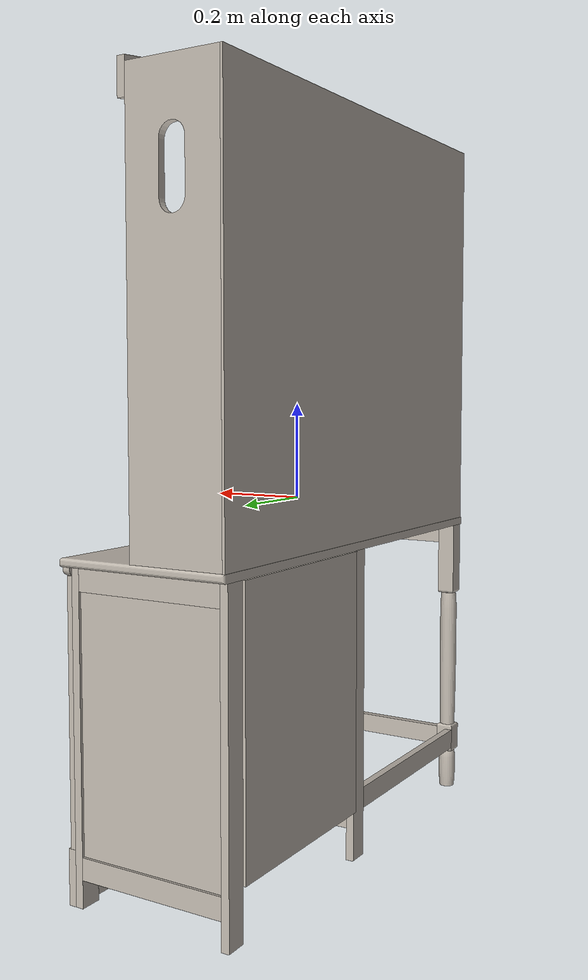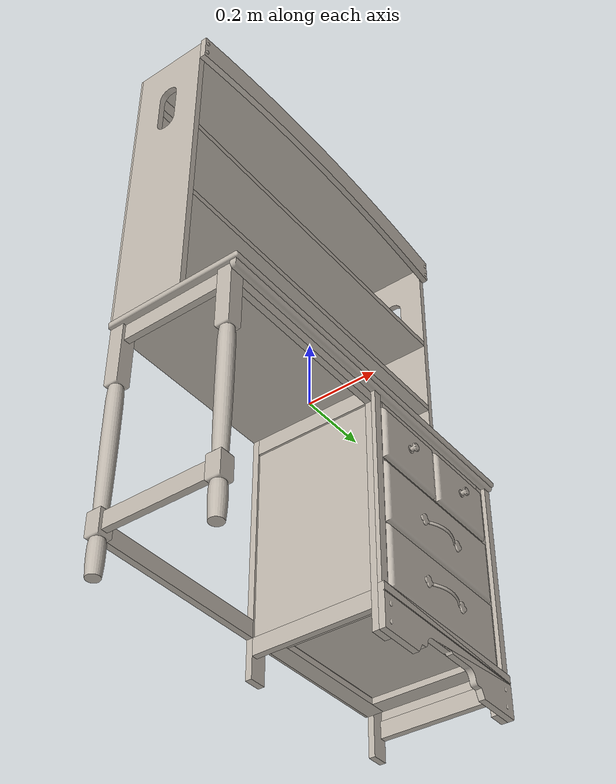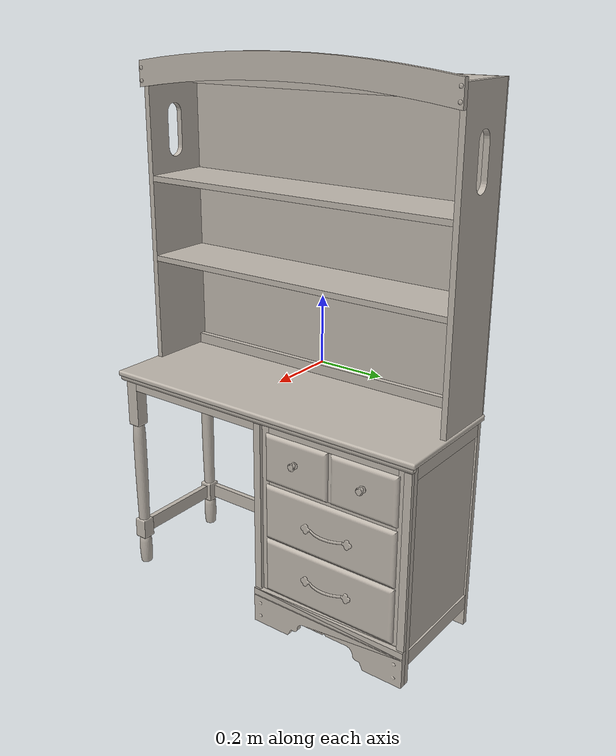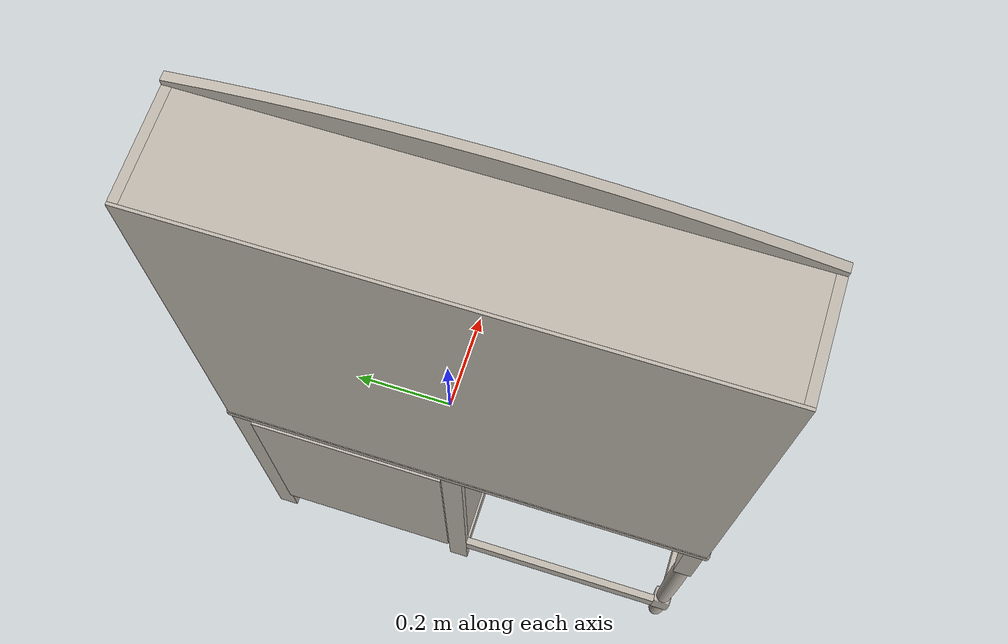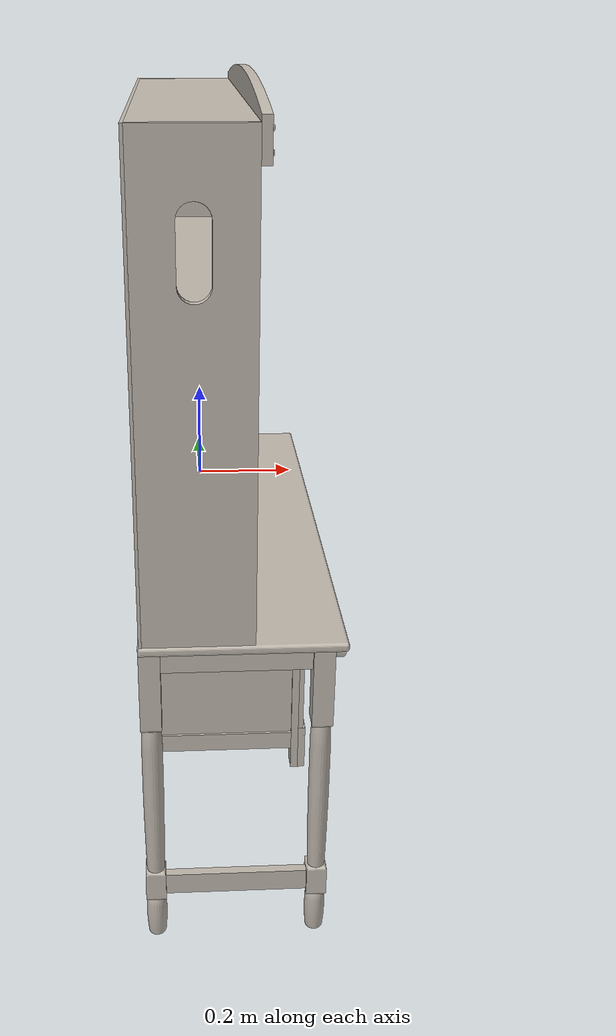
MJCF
<?xml version='1.0' encoding='utf-8'?>
<mujoco model="bookshelf_v2">
  <compiler angle="radian" meshdir="assets" texturedir="assets" autolimits="true" /><asset>
    <texture type="2d" name="wood" file="texture_0.png"/>
    <material name="default" shininess="0.1" texture="wood"/>
    <mesh name="original-26" file="original-26.obj"  />
    <mesh name="original-24" file="original-24.obj"  />
    <mesh name="original-22" file="original-22.obj"  />
    <mesh name="original-23" file="original-23.obj"  />
    <mesh name="original-25" file="original-25.obj"  />
    <mesh name="original-27" file="original-27.obj"  />
    <mesh name="original-98" file="original-98.obj"  />
    <mesh name="original-97" file="original-97.obj"  />
    <mesh name="original-96" file="original-96.obj"  />
    <mesh name="original-49" file="original-49.obj"  />
    <mesh name="original-47" file="original-47.obj"  />
    <mesh name="original-45" file="original-45.obj"  />
    <mesh name="original-46" file="original-46.obj"  />
    <mesh name="original-48" file="original-48.obj"  />
    <mesh name="original-50" file="original-50.obj"  />
    <mesh name="original-83" file="original-83.obj"  />
    <mesh name="original-75" file="original-75.obj"  />
    <mesh name="original-39" file="original-39.obj"  />
    <mesh name="original-37" file="original-37.obj"  />
    <mesh name="original-35" file="original-35.obj"  />
    <mesh name="original-36" file="original-36.obj"  />
    <mesh name="original-38" file="original-38.obj"  />
    <mesh name="original-40" file="original-40.obj"  />
    <mesh name="original-92" file="original-92.obj"  />
    <mesh name="original-93" file="original-93.obj"  />
    <mesh name="original-94" file="original-94.obj"  />
    <mesh name="original-73" file="original-73.obj"  />
    <mesh name="original-68" file="original-68.obj"  />
    <mesh name="original-56" file="original-56.obj"  />
    <mesh name="original-57" file="original-57.obj"  />
    <mesh name="original-51" file="original-51.obj"  />
    <mesh name="original-29" file="original-29.obj"  />
    <mesh name="original-88" file="original-88.obj"  />
    <mesh name="original-87" file="original-87.obj"  />
    <mesh name="original-80" file="original-80.obj"  />
    <mesh name="original-79" file="original-79.obj"  />
    <mesh name="new-0" file="new-0.obj"  />
    <mesh name="new-1" file="new-1.obj"  />
    <mesh name="original-61" file="original-61.obj"  />
    <mesh name="original-70" file="original-70.obj"  />
    <mesh name="original-77" file="original-77.obj"  />
    <mesh name="original-85" file="original-85.obj"  />
    <mesh name="original-18" file="original-18.obj"  />
    <mesh name="original-54" file="original-54.obj"  />
    <mesh name="original-32" file="original-32.obj"  />
    <mesh name="original-42" file="original-42.obj"  />
    <mesh name="original-71" file="original-71.obj"  />
    <mesh name="original-16" file="original-16.obj"  />
    <mesh name="original-19" file="original-19.obj"  />
    <mesh name="original-28" file="original-28.obj"  />
    <mesh name="original-52" file="original-52.obj"  />
    <mesh name="original-58" file="original-58.obj"  />
    <mesh name="original-63" file="original-63.obj"  />
    <mesh name="original-86" file="original-86.obj"  />
    <mesh name="original-78" file="original-78.obj"  />
    <mesh name="original-65" file="original-65.obj"  />
    <mesh name="original-53" file="original-53.obj"  />
    <mesh name="original-31" file="original-31.obj"  />
    <mesh name="original-41" file="original-41.obj"  />
    <mesh name="original-72" file="original-72.obj"  />
    <mesh name="original-30" file="original-30.obj"  />
    <mesh name="original-69" file="original-69.obj"  />
    <mesh name="original-17" file="original-17.obj"  />
    <mesh name="original-67" file="original-67.obj"  />
    <mesh name="original-60" file="original-60.obj"  />
    <mesh name="original-64" file="original-64.obj"  />
    <mesh name="original-62" file="original-62.obj"  />
    <mesh name="original-55" file="original-55.obj"  />
    <mesh name="original-59" file="original-59.obj"  />
    <mesh name="original-8" file="original-8.obj"  />
    <mesh name="original-4" file="original-4.obj"  />
    <mesh name="original-9" file="original-9.obj"  />
    <mesh name="original-2" file="original-2.obj"  />
    <mesh name="original-3" file="original-3.obj"  />
    <mesh name="original-10" file="original-10.obj"  />
    <mesh name="original-7" file="original-7.obj"  />
    <mesh name="original-5" file="original-5.obj"  />
    <mesh name="original-14" file="original-14.obj"  />
    <mesh name="original-11" file="original-11.obj"  />
    <mesh name="original-6" file="original-6.obj"  />
    <mesh name="original-12" file="original-12.obj"  />
    <mesh name="original-13" file="original-13.obj"  />
  </asset>
  <worldbody>
    <site name="lower_shelf_site" type="box" size=".1 .5 .12" pos="0 -.06 0.35" rgba="1 0 0 0" />
    <site name="upper_shelf_site" type="box"  size=".1 .5 .12" pos="0 -0.06 0.6" rgba="1 0 0 0"/>
    <body name="counter">
    <geom quat="0.5 0.5 0.5 0.5" type="mesh" material="default" mesh="original-73" solimp="0.95 0.98 0.001" solref="0.004 1"/>
    </body>

    <geom quat="0.5 0.5 0.5 0.5" type="mesh" material="default" mesh="original-68" solimp="0.95 0.98 0.001" solref="0.004 1"/>
    <geom quat="0.5 0.5 0.5 0.5" type="mesh" material="default" mesh="original-56" solimp="0.95 0.98 0.001" solref="0.004 1"/>
    <geom quat="0.5 0.5 0.5 0.5" type="mesh" material="default" mesh="original-57" solimp="0.95 0.98 0.001" solref="0.004 1"/>
    <geom quat="0.5 0.5 0.5 0.5" type="mesh" material="default" mesh="original-51" solimp="0.95 0.98 0.001" solref="0.004 1"/>
    <geom quat="0.5 0.5 0.5 0.5" type="mesh" material="default" mesh="original-29" solimp="0.95 0.98 0.001" solref="0.004 1"/>
    <geom quat="0.5 0.5 0.5 0.5" type="mesh" material="default" mesh="original-88" solimp="0.95 0.98 0.001" solref="0.004 1"/>
    <geom quat="0.5 0.5 0.5 0.5" type="mesh" material="default" mesh="original-87" solimp="0.95 0.98 0.001" solref="0.004 1"/>
    <geom quat="0.5 0.5 0.5 0.5" type="mesh" material="default" mesh="original-80" solimp="0.95 0.98 0.001" solref="0.004 1"/>
    <geom quat="0.5 0.5 0.5 0.5" type="mesh" material="default" mesh="original-79" solimp="0.95 0.98 0.001" solref="0.004 1"/>
    <geom quat="0.5 0.5 0.5 0.5" type="mesh" material="default" mesh="new-0" solimp="0.95 0.98 0.001" solref="0.004 1"/>
    <geom quat="0.5 0.5 0.5 0.5" type="mesh" material="default" mesh="new-1" solimp="0.95 0.98 0.001" solref="0.004 1"/>
    <geom quat="0.5 0.5 0.5 0.5" type="mesh" material="default" mesh="original-61" solimp="0.95 0.98 0.001" solref="0.004 1"/>
    <geom quat="0.5 0.5 0.5 0.5" type="mesh" material="default" mesh="original-70" solimp="0.95 0.98 0.001" solref="0.004 1"/>
    <geom quat="0.5 0.5 0.5 0.5" type="mesh" material="default" mesh="original-77" solimp="0.95 0.98 0.001" solref="0.004 1"/>
    <geom quat="0.5 0.5 0.5 0.5" type="mesh" material="default" mesh="original-85" solimp="0.95 0.98 0.001" solref="0.004 1"/>
    <geom quat="0.5 0.5 0.5 0.5" type="mesh" material="default" mesh="original-18" solimp="0.95 0.98 0.001" solref="0.004 1"/>
    <geom quat="0.5 0.5 0.5 0.5" type="mesh" material="default" mesh="original-54" solimp="0.95 0.98 0.001" solref="0.004 1"/>
    <geom quat="0.5 0.5 0.5 0.5" type="mesh" material="default" mesh="original-32" solimp="0.95 0.98 0.001" solref="0.004 1"/>
    <geom quat="0.5 0.5 0.5 0.5" type="mesh" material="default" mesh="original-42" solimp="0.95 0.98 0.001" solref="0.004 1"/>
    <geom quat="0.5 0.5 0.5 0.5" type="mesh" material="default" mesh="original-71" solimp="0.95 0.98 0.001" solref="0.004 1"/>
    <geom quat="0.5 0.5 0.5 0.5" type="mesh" material="default" mesh="original-16" solimp="0.95 0.98 0.001" solref="0.004 1"/>
    <geom quat="0.5 0.5 0.5 0.5" type="mesh" material="default" mesh="original-19" solimp="0.95 0.98 0.001" solref="0.004 1"/>
    <geom quat="0.5 0.5 0.5 0.5" type="mesh" material="default" mesh="original-28" solimp="0.95 0.98 0.001" solref="0.004 1"/>
    <geom quat="0.5 0.5 0.5 0.5" type="mesh" material="default" mesh="original-52" solimp="0.95 0.98 0.001" solref="0.004 1"/>
    <geom quat="0.5 0.5 0.5 0.5" type="mesh" material="default" mesh="original-58" solimp="0.95 0.98 0.001" solref="0.004 1"/>
    <geom quat="0.5 0.5 0.5 0.5" type="mesh" material="default" mesh="original-63" solimp="0.95 0.98 0.001" solref="0.004 1"/>
    <geom quat="0.5 0.5 0.5 0.5" type="mesh" material="default" mesh="original-86" solimp="0.95 0.98 0.001" solref="0.004 1"/>
    <geom quat="0.5 0.5 0.5 0.5" type="mesh" material="default" mesh="original-78" solimp="0.95 0.98 0.001" solref="0.004 1"/>
    <geom quat="0.5 0.5 0.5 0.5" type="mesh" material="default" mesh="original-65" solimp="0.95 0.98 0.001" solref="0.004 1"/>
    <geom quat="0.5 0.5 0.5 0.5" type="mesh" material="default" mesh="original-53" solimp="0.95 0.98 0.001" solref="0.004 1"/>

    <geom quat="0.5 0.5 0.5 0.5" type="mesh" material="default" mesh="original-31" solimp="0.95 0.98 0.001" solref="0.004 1"/>
    <geom quat="0.5 0.5 0.5 0.5" type="mesh" material="default" mesh="original-41" solimp="0.95 0.98 0.001" solref="0.004 1"/>
    <geom quat="0.5 0.5 0.5 0.5" type="mesh" material="default" mesh="original-72" solimp="0.95 0.98 0.001" solref="0.004 1"/>
    <geom quat="0.5 0.5 0.5 0.5" type="mesh" material="default" mesh="original-30" solimp="0.95 0.98 0.001" solref="0.004 1"/>
    <geom quat="0.5 0.5 0.5 0.5" type="mesh" material="default" mesh="original-69" solimp="0.95 0.98 0.001" solref="0.004 1"/>
    <geom quat="0.5 0.5 0.5 0.5" type="mesh" material="default" mesh="original-17" solimp="0.95 0.98 0.001" solref="0.004 1"/>
    <geom quat="0.5 0.5 0.5 0.5" type="mesh" material="default" mesh="original-67" solimp="0.95 0.98 0.001" solref="0.004 1"/>
    <geom quat="0.5 0.5 0.5 0.5" type="mesh" material="default" mesh="original-60" solimp="0.95 0.98 0.001" solref="0.004 1"/>

    <geom quat="0.5 0.5 0.5 0.5" type="mesh" material="default" mesh="original-64" solimp="0.95 0.98 0.001" solref="0.004 1"/>
    <geom quat="0.5 0.5 0.5 0.5" type="mesh" material="default" mesh="original-62" solimp="0.95 0.98 0.001" solref="0.004 1"/>
    <geom quat="0.5 0.5 0.5 0.5" type="mesh" material="default" mesh="original-55" solimp="0.95 0.98 0.001" solref="0.004 1"/>
    <geom quat="0.5 0.5 0.5 0.5" type="mesh" material="default" mesh="original-59" solimp="0.95 0.98 0.001" solref="0.004 1"/>

    <body name="upper_shelf" >
    <geom quat="0.5 0.5 0.5 0.5" type="mesh" material="default" mesh="original-8" solimp="0.95 0.98 0.001" solref="0.004 1"/>
    </body>

    <body name="lower_shelf" >
    <geom quat="0.5 0.5 0.5 0.5" type="mesh" material="default" mesh="original-4" solimp="0.95 0.98 0.001" solref="0.004 1"/>
    </body>

    <geom quat="0.5 0.5 0.5 0.5" type="mesh" material="default" mesh="original-9" solimp="0.95 0.98 0.001" solref="0.004 1"/>
    <geom quat="0.5 0.5 0.5 0.5" type="mesh" material="default" mesh="original-2" solimp="0.95 0.98 0.001" solref="0.004 1"/>
    <geom quat="0.5 0.5 0.5 0.5" type="mesh" material="default" mesh="original-3" solimp="0.95 0.98 0.001" solref="0.004 1"/>
    <geom quat="0.5 0.5 0.5 0.5" type="mesh" material="default" mesh="original-10" solimp="0.95 0.98 0.001" solref="0.004 1"/>
    <geom quat="0.5 0.5 0.5 0.5" type="mesh" material="default" mesh="original-7" solimp="0.95 0.98 0.001" solref="0.004 1"/>
    <geom quat="0.5 0.5 0.5 0.5" type="mesh" material="default" mesh="original-5" solimp="0.95 0.98 0.001" solref="0.004 1"/>
    <geom quat="0.5 0.5 0.5 0.5" type="mesh" material="default" mesh="original-14" solimp="0.95 0.98 0.001" solref="0.004 1"/>
    <geom quat="0.5 0.5 0.5 0.5" type="mesh" material="default" mesh="original-11" solimp="0.95 0.98 0.001" solref="0.004 1"/>
    <geom quat="0.5 0.5 0.5 0.5" type="mesh" material="default" mesh="original-6" solimp="0.95 0.98 0.001" solref="0.004 1"/>
    <geom quat="0.5 0.5 0.5 0.5" type="mesh" material="default" mesh="original-12" solimp="0.95 0.98 0.001" solref="0.004 1"/>
    <geom quat="0.5 0.5 0.5 0.5" type="mesh" material="default" mesh="original-13" solimp="0.95 0.98 0.001" solref="0.004 1"/>
    <body name="link_0" quat="0.5 0.5 0.5 0.5">
      <joint name="joint_0" pos="0 0 0" axis="0 0 1" type="slide" range="0 0.296" />
      <geom type="mesh" material="default" mesh="original-26" contype="0" conaffinity="0" solimp="0.95 0.98 0.001" solref="0.004 1"/>
      <geom type="mesh" material="default" mesh="original-24" contype="0" conaffinity="0" solimp="0.95 0.98 0.001" solref="0.004 1"/>
      <geom type="mesh" material="default" mesh="original-22" contype="0" conaffinity="0" solimp="0.95 0.98 0.001" solref="0.004 1"/>
      <geom type="mesh" material="default" mesh="original-23" contype="0" conaffinity="0" solimp="0.95 0.98 0.001" solref="0.004 1"/>
      <geom type="mesh" material="default" mesh="original-25" contype="0" conaffinity="0" solimp="0.95 0.98 0.001" solref="0.004 1"/>
      <geom type="mesh" material="default" mesh="original-27" contype="0" conaffinity="0" solimp="0.95 0.98 0.001" solref="0.004 1"/>
      <geom type="mesh" material="default" mesh="original-98" contype="0" conaffinity="0" solimp="0.95 0.98 0.001" solref="0.004 1"/>
      <geom type="mesh" material="default" mesh="original-97" contype="0" conaffinity="0" solimp="0.95 0.98 0.001" solref="0.004 1"/>
      <geom type="mesh" material="default" mesh="original-96" contype="0" conaffinity="0" solimp="0.95 0.98 0.001" solref="0.004 1"/>
    </body>
    <body name="link_1" quat="0.5 0.5 0.5 0.5">
      <joint name="joint_1" pos="0 0 0" axis="0 0 1" type="slide" range="0 0.299" />
      <geom type="mesh" material="default" mesh="original-49" solimp="0.95 0.98 0.001" solref="0.004 1"/>
      <geom type="mesh" material="default" mesh="original-47" solimp="0.95 0.98 0.001" solref="0.004 1"/>
      <geom type="mesh" material="default" mesh="original-45" solimp="0.95 0.98 0.001" solref="0.004 1"/>
      <geom type="mesh" material="default" mesh="original-46" solimp="0.95 0.98 0.001" solref="0.004 1"/>
      <geom type="mesh" material="default" mesh="original-48" solimp="0.95 0.98 0.001" solref="0.004 1"/>
      <geom type="mesh" material="default" mesh="original-50" solimp="0.95 0.98 0.001" solref="0.004 1"/>
      <geom type="mesh" material="default" mesh="original-83" solimp="0.95 0.98 0.001" solref="0.004 1"/>
      <geom type="mesh" material="default" mesh="original-75" solimp="0.95 0.98 0.001" solref="0.004 1"/>
    </body>
    <body name="link_2" quat="0.5 0.5 0.5 0.5">
      <joint name="joint_2" pos="0 0 0" axis="0 0 1" type="slide" range="0 0.299" />
      <geom type="mesh" material="default" mesh="original-39" solimp="0.95 0.98 0.001" solref="0.004 1"/>
      <geom type="mesh" material="default" mesh="original-37" solimp="0.95 0.98 0.001" solref="0.004 1"/>
      <geom type="mesh" material="default" mesh="original-35" solimp="0.95 0.98 0.001" solref="0.004 1"/>
      <geom type="mesh" material="default" mesh="original-36" solimp="0.95 0.98 0.001" solref="0.004 1"/>
      <geom type="mesh" material="default" mesh="original-38" solimp="0.95 0.98 0.001" solref="0.004 1"/>
      <geom type="mesh" material="default" mesh="original-40" solimp="0.95 0.98 0.001" solref="0.004 1"/>
      <geom type="mesh" material="default" mesh="original-92" solimp="0.95 0.98 0.001" solref="0.004 1"/>
      <geom type="mesh" material="default" mesh="original-93" solimp="0.95 0.98 0.001" solref="0.004 1"/>
      <geom type="mesh" material="default" mesh="original-94" solimp="0.95 0.98 0.001" solref="0.004 1"/>
    </body>
  </worldbody>
</mujoco>
